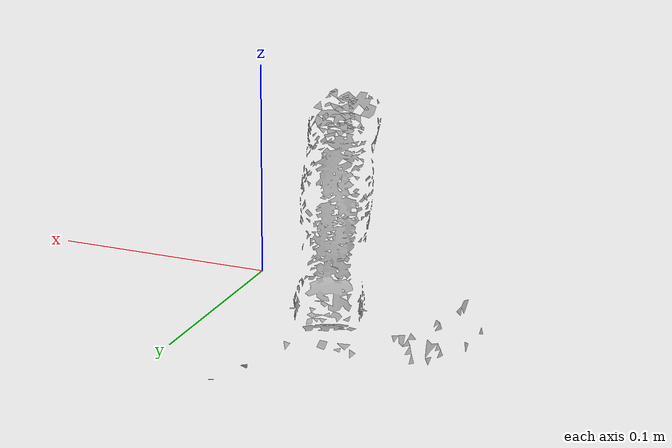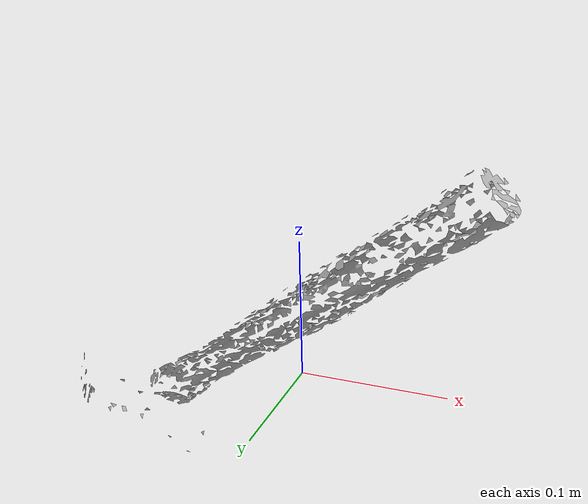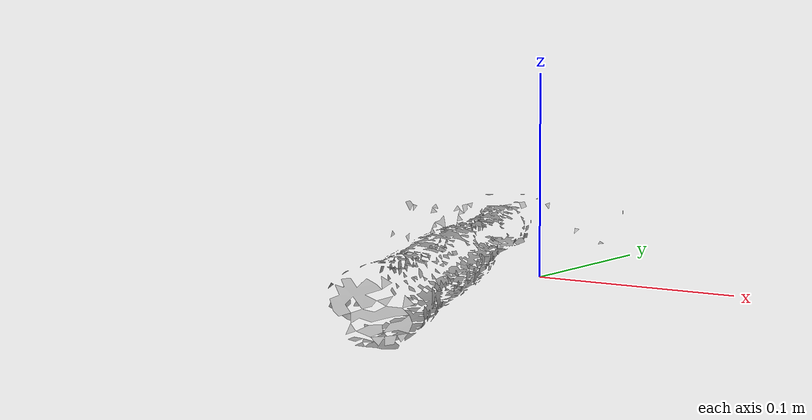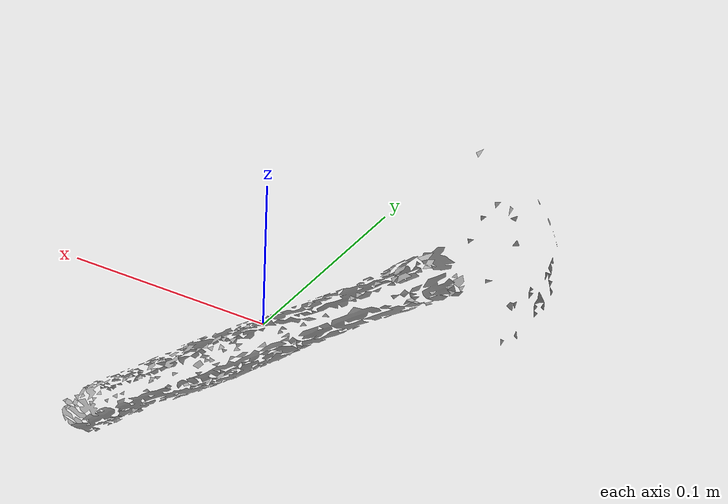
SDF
<?xml version="1.0" ?>
<sdf version="1.4">
  <model name='ycb_048_hammer'>
    <link name='body'>
      <inertial>
        <mass>0.349569585023</mass>
        <pose>-0.0285708609099 -0.0126726731492 0.0156534840465 0 0 0</pose>
        <inertia>
          <ixx>0.00356169146589</ixx>
          <ixy>0.00129473264632</ixy>
          <ixz>9.34011418982e-06</ixz>
          <iyy>0.000624208912093</iyy>
          <iyz>-1.69438635021e-05</iyz>
          <izz>0.00415482384393</izz>
        </inertia>
      </inertial>
      <visual name='ycb_048_hammer_visual'>
        <pose>0 0 0 0 0 0</pose>
        <geometry>
          <mesh>
            <uri>model://ycb_048_hammer/meshes/textured.dae</uri>
          </mesh>
        </geometry>
      </visual>
      <collision name='ycb_048_hammer_collision'>
        <pose>0 0 0 0 0 0</pose>
        <geometry>
          <mesh>
            <uri>model://ycb_048_hammer/meshes/nontextured.stl</uri>
          </mesh>
        </geometry>
        <max_contacts>10</max_contacts>
      </collision>
    </link>
  </model>
</sdf>
